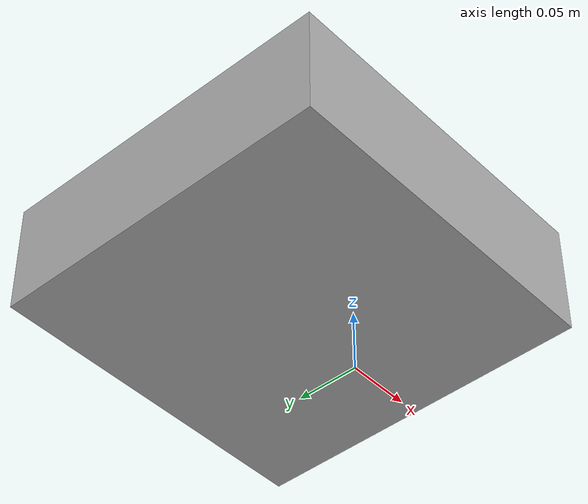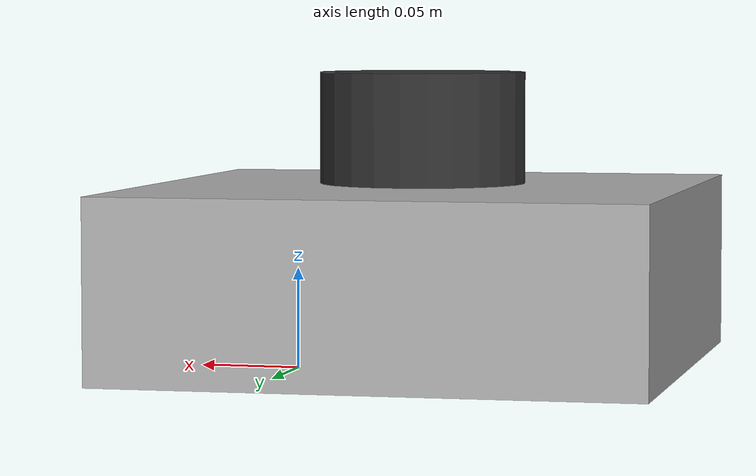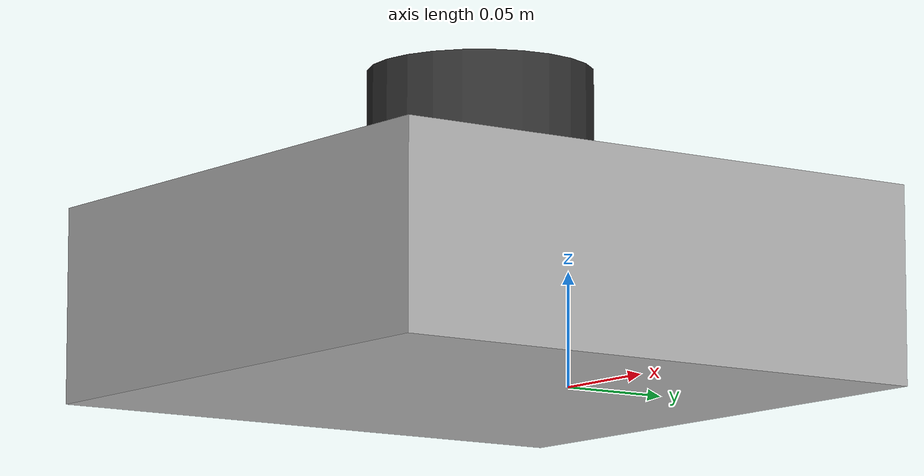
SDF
<sdf version="1.8">
  <model name="turtlebot3_waffle_pi">
    <pose>0.0 0.0 0.0 0.0 0.0 0.0</pose>

    <link name="base_footprint"/>

    <link name="base_link">
      <inertial>
        <pose>-0.064 0 0.048 0 0 0</pose>
        <inertia>
          <ixx>4.2111447e-02</ixx>
          <ixy>0</ixy>
          <ixz>0</ixz>
          <iyy>4.2111447e-02</iyy>
          <iyz>0</iyz>
          <izz>7.5254874e-02</izz>
        </inertia>
        <mass>1.3729096e+00</mass>
      </inertial>

      <collision name="base_collision">
        <pose>-0.064 0 0.048 0 0 0</pose>
        <geometry>
          <box>
            <size>0.265 0.265 0.089</size>
          </box>
        </geometry>
      </collision>

      <visual name="base_visual">
        <pose>-0.064 0 0.048 0 0 0</pose>
        <geometry>
          <box>
            <size>0.265 0.265 0.089</size>
          </box>
        </geometry>
        <material>
          <ambient>0.5 0.5 0.5 1.0</ambient>
          <diffuse>0.7 0.7 0.7 1.0</diffuse>
          <specular>0.1 0.1 0.1 1.0</specular>
        </material>
      </visual>
    </link>

    <!-- ...existing links and joints... -->

    <link name="base_scan">
      <inertial>
        <pose>-0.052 0 0.111 0 0 0</pose>
        <inertia>
          <ixx>0.001</ixx>
          <ixy>0.000</ixy>
          <ixz>0.000</ixz>
          <iyy>0.001</iyy>
          <iyz>0.000</iyz>
          <izz>0.001</izz>
        </inertia>
        <mass>0.114</mass>
      </inertial>

      <collision name="lidar_sensor_collision">
        <pose>-0.052 0 0.111 0 0 0</pose>
        <geometry>
          <cylinder>
            <radius>0.0508</radius>
            <length>0.055</length>
          </cylinder>
        </geometry>
      </collision>

      <visual name="lidar_sensor_visual">
        <pose>-0.064 0 0.121 0 0 0</pose>
        <geometry>
          <cylinder>
            <radius>0.0508</radius>
            <length>0.055</length>
          </cylinder>
        </geometry>
        <material>
          <ambient>0.2 0.2 0.2 1.0</ambient>
          <diffuse>0.2 0.2 0.2 1.0</diffuse>
        </material>
      </visual>

      <sensor name="hls_lfcd_lds" type="gpu_lidar">
        <always_on>true</always_on>
        <visualize>true</visualize>
        <pose>-0.064 0 0.121 0 0 0</pose>
        <update_rate>10</update_rate>
        <topic>scan</topic>
        <gz_frame_id>base_scan</gz_frame_id>
        <lidar>
          <scan>
            <horizontal>
              <samples>360</samples>
              <resolution>1.000000</resolution>
              <min_angle>0.000000</min_angle>
              <max_angle>6.280000</max_angle>
            </horizontal>
          </scan>
          <range>
            <min>0.120000</min>
            <max>3.5</max>
            <resolution>0.015000</resolution>
          </range>
          <noise>
            <type>gaussian</type>
            <mean>0.0</mean>
            <stddev>0.01</stddev>
          </noise>
        </lidar>
      </sensor>
    </link>

    <!-- ...remaining joints and plugins from the main file... -->

  </model>
</sdf>
